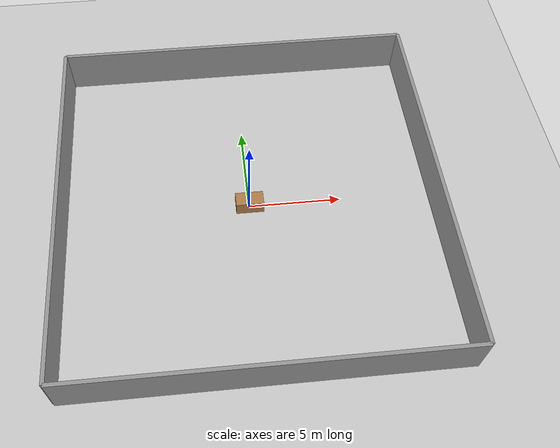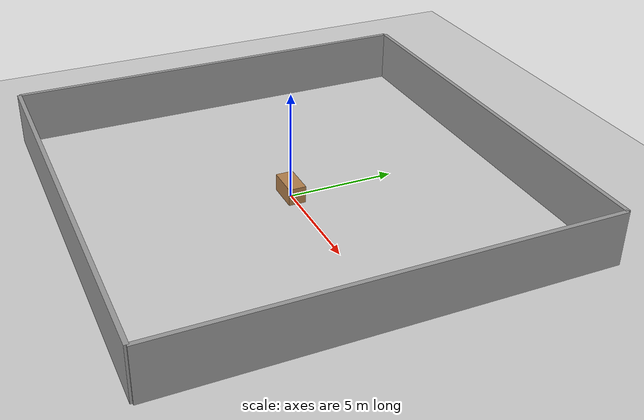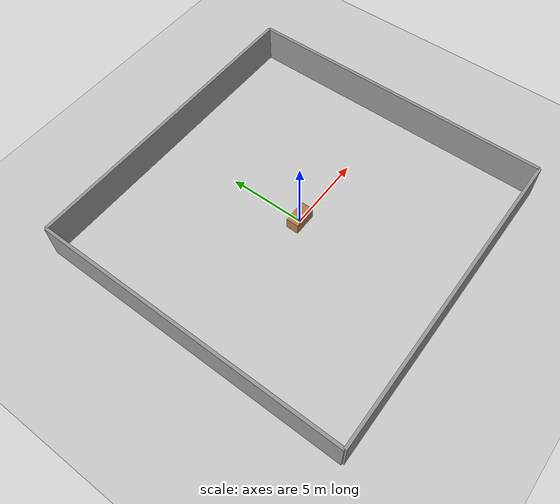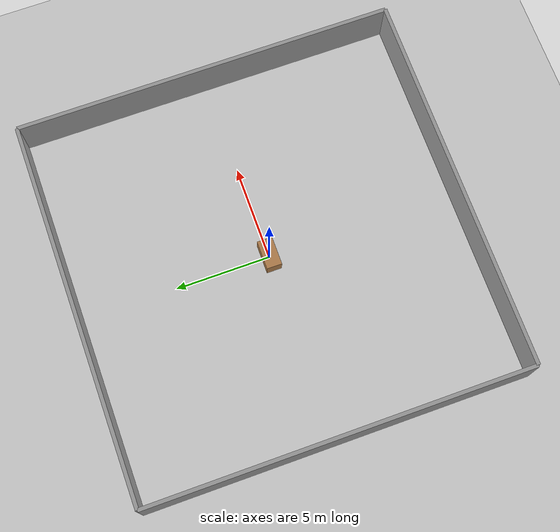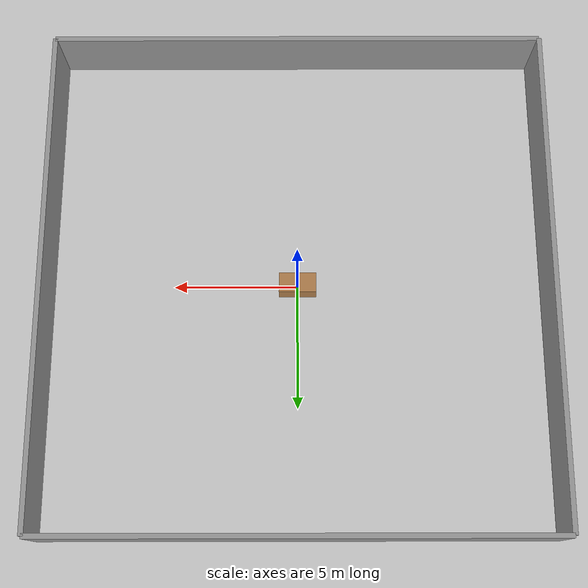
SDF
<?xml version="1.0" ?>
<sdf version="1.6">
  <world name="ufba_world">

    <include>
      <uri>model://sun</uri>
    </include>

    <include>
      <uri>model://ground_plane</uri>
    </include>

    <model name='parede_norte'>
      <static>true</static>
      <pose>0 10 1.25 0 0 0</pose>
      <link name='link'>
        <collision name='collision'><geometry><box><size>20 0.2 2.5</size></box></geometry></collision>
        <visual name='visual'><geometry><box><size>20 0.2 2.5</size></box></geometry>
        <material><script><uri>file://media/materials/scripts/gazebo.material</uri><name>Gazebo/Grey</name></script></material></visual>
      </link>
    </model>
    <model name='parede_sul'>
      <static>true</static>
      <pose>0 -10 1.25 0 0 0</pose>
      <link name='link'>
        <collision name='collision'><geometry><box><size>20 0.2 2.5</size></box></geometry></collision>
        <visual name='visual'><geometry><box><size>20 0.2 2.5</size></box></geometry>
        <material><script><uri>file://media/materials/scripts/gazebo.material</uri><name>Gazebo/Grey</name></script></material></visual>
      </link>
    </model>
    <model name='parede_leste'>
      <static>true</static>
      <pose>10 0 1.25 0 0 1.5707</pose>
      <link name='link'>
        <collision name='collision'><geometry><box><size>20 0.2 2.5</size></box></geometry></collision>
        <visual name='visual'><geometry><box><size>20 0.2 2.5</size></box></geometry>
        <material><script><uri>file://media/materials/scripts/gazebo.material</uri><name>Gazebo/Grey</name></script></material></visual>
      </link>
    </model>
    <model name='parede_oeste'>
      <static>true</static>
      <pose>-10 0 1.25 0 0 1.5707</pose>
      <link name='link'>
        <collision name='collision'><geometry><box><size>20 0.2 2.5</size></box></geometry></collision>
        <visual name='visual'><geometry><box><size>20 0.2 2.5</size></box></geometry>
        <material><script><uri>file://media/materials/scripts/gazebo.material</uri><name>Gazebo/Grey</name></script></material></visual>
      </link>
    </model>

    <model name="mesa_de_trabalho">
        <static>true</static>
        <pose>0 0 0.4 0 0 0</pose>
        <link name="link">
            <collision name="collision">
                <geometry>
                    <box><size>1.5 0.8 0.8</size></box>
                </geometry>
            </collision>
            <visual name="visual">
                <geometry>
                    <box><size>1.5 0.8 0.8</size></box>
                </geometry>
                <material>
                    <script>
                        <uri>file://media/materials/scripts/gazebo.material</uri>
                        <name>Gazebo/Wood</name>
                    </script>
                </material>
            </visual>
        </link>
    </model>

  </world>
</sdf>
